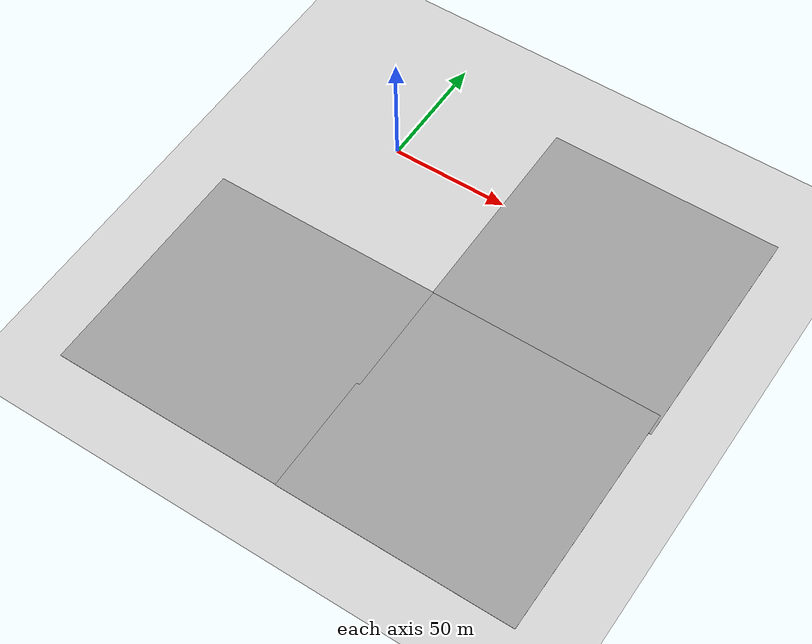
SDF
<sdf version="1.7">
 <world name="small_road_fixed">
  <model name="ground_plane">
   <static>1</static>
   <link name="link">
    <collision name="collision">
     <geometry><plane><normal>0 0 1</normal><size>100 100</size></plane></geometry>
     <surface>
      <contact><collide_bitmask>65535</collide_bitmask></contact>
      <friction><ode><mu>100</mu><mu2>50</mu2></ode></friction>
     </surface>
    </collision>
    <visual name="visual">
     <cast_shadows>0</cast_shadows>
     <geometry><plane><normal>0 0 1</normal><size>100 100</size></plane></geometry>
     <material>
      <script><uri>file://media/materials/scripts/gazebo.material</uri><name>Gazebo/Grey</name></script>
     </material>
    </visual>
   </link>
  </model>
  <model name="ground_plane_0">
   <static>1</static>
   <link name="link">
    <collision name="collision">
     <geometry><plane><normal>0 0 1</normal><size>100 100</size></plane></geometry>
     <surface><friction><ode><mu>100</mu><mu2>50</mu2></ode></friction></surface>
    </collision>
    <visual name="visual">
     <cast_shadows>0</cast_shadows>
     <geometry><plane><normal>0 0 1</normal><size>100 100</size></plane></geometry>
     <material>
      <script><uri>file://media/materials/scripts/gazebo.material</uri><name>Gazebo/Grey</name></script>
     </material>
    </visual>
   </link>
   <pose>0.062781 -99.8695 0 0 -0 0</pose>
  </model>
  <model name="ground_plane_2">
   <static>1</static>
   <link name="link">
    <collision name="collision">
     <geometry><plane><normal>0 0 1</normal><size>100 100</size></plane></geometry>
     <surface><friction><ode><mu>100</mu><mu2>50</mu2></ode></friction></surface>
    </collision>
    <visual name="visual">
     <cast_shadows>0</cast_shadows>
     <geometry><plane><normal>0 0 1</normal><size>100 100</size></plane></geometry>
     <material>
      <script><uri>file://media/materials/scripts/gazebo.material</uri><name>Gazebo/Grey</name></script>
     </material>
    </visual>
   </link>
   <pose>99.7167 -8.78037 0 0 -0 0</pose>
  </model>
  <model name="ground_plane_3">
   <static>1</static>
   <link name="link">
    <collision name="collision">
     <geometry><plane><normal>0 0 1</normal><size>100 100</size></plane></geometry>
     <surface><friction><ode><mu>100</mu><mu2>50</mu2></ode></friction></surface>
    </collision>
    <visual name="visual">
     <cast_shadows>0</cast_shadows>
     <geometry><plane><normal>0 0 1</normal><size>100 100</size></plane></geometry>
     <material>
      <script><uri>file://media/materials/scripts/gazebo.material</uri><name>Gazebo/Grey</name></script>
     </material>
    </visual>
   </link>
   <pose>98.6691 -100.03 0 0 -0 0</pose>
  </model>
 </world>
</sdf>
